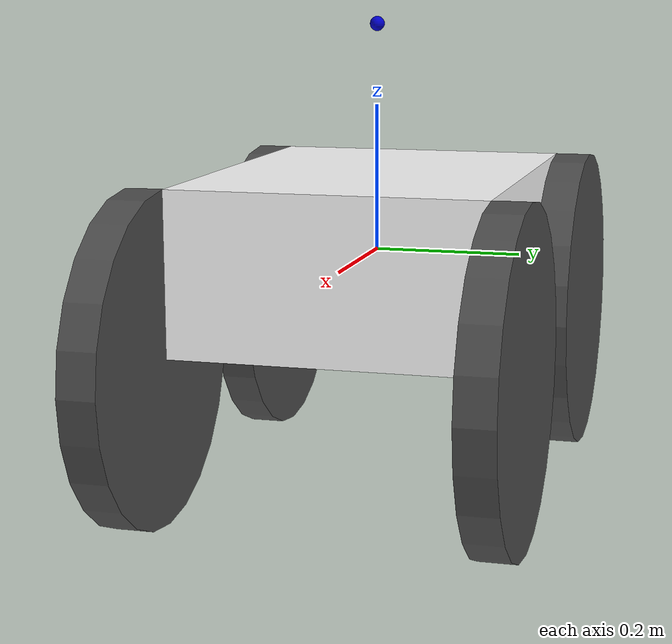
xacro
<?xml version="1.0"?>
<robot name="simple_4_robot" xmlns:xacro="http://ros.org/wiki/xacro">

<!-- Defining the colors used in this robot -->
  <material name="Black">
    <color rgba="0.0 0.0 0.0 1.0"/>
  </material>

  <material name="Red">
    <color rgba="0.8 0.0 0.0 1.0"/>
  </material>

  <material name="White">
    <color rgba="1.0 1.0 1.0 1.0"/>
  </material>

  <material name="Blue">
    <color rgba="0.0 0.0 0.8 1.0"/>
  </material>

  <!-- PROPERTY LIST -->
  <!--All units in m-kg-s-radians unit system -->
  <xacro:property name="M_PI" value="3.1415926535897931" />
  <xacro:property name="M_PI_2" value="1.570796327" />
  <xacro:property name="DEG_TO_RAD" value="0.017453293" />

  <xacro:property name="base_link_length" value="0.54" />
  <xacro:property name="base_link_width" value="0.42" />
  <xacro:property name="base_link_height" value="0.22" />
  <xacro:property name="base_link_mass" value="20" />

  <xacro:property name="wheel_radius" value="0.22 " />
  <xacro:property name="wheel_thickness" value="0.05" />
  <xacro:property name="wheel_mass" value="2.5" />
  <xacro:property name="wheel_x_ratio" value="1" />
  <xacro:property name="wheel_y_ratio" value="1" />

  <xacro:property name="laser_link_radius" value="0.01" />
  <xacro:property name="laser_link_mass" value="0.05" />
  <xacro:property name="laser_link_y" value="0.2" />

  <!-- Macro for calculating inertia of cylinder -->
  <xacro:macro name="cylinder_inertia" params="m r t">
    <inertia  ixx="${m*(3*r*r+t*t)/12}" ixy = "0" ixz = "0"
              iyy="${m*(3*r*r+t*t)/12}" iyz = "0"
              izz="${m*r*r/2}" />
  </xacro:macro>

  <xacro:macro name="cuboid_inertia" params="m l w h">
    <inertia  ixx="${m*(w*w+h*h)/12}" ixy = "0" ixz = "0"
              iyy="${m*(l*l+h*h)/12}" iyz = "0"
              izz="${m*(l*l+w*w)/12}" />
  </xacro:macro>

  <xacro:macro name="sphere_inertia" params="m r">
    <inertia  ixx="${2*m*r*r/5}" ixy = "0" ixz = "0"
              iyy="${2*m*r*r/5}" iyz = "0"
              izz="${2*m*r*r/5}" />
  </xacro:macro>

 <link name="base_link">
    <inertial>
      <mass value="${base_link_mass}"/>
      <origin xyz="0 0 0"/>
      <xacro:cuboid_inertia  m="${base_link_mass}" l="${base_link_length}" w="${base_link_width}" h="${base_link_height}" />
    </inertial>
    <visual>
      <origin rpy="0 0 0" xyz="0 0 0"/>
      <geometry>
        <box size="${base_link_length} ${base_link_width} ${base_link_height}"/>
      </geometry>
      <material name="White"/>
    </visual>
    <collision>
      <origin rpy="0 0 0 " xyz="0 0 0"/>
      <geometry>
        <box size="${base_link_length} ${base_link_width} ${base_link_height}"/>
      </geometry>
    </collision>
  </link>

  <link name="front_right_wheel_link">
    <visual>
      <origin rpy="1.57079632679 0  0 " xyz="0 0 0"/>
      <geometry>
        <cylinder length="${wheel_thickness}" radius="${wheel_radius}"/>
      </geometry>
      <material name="DarkGray"/>
    </visual>
    <collision>
      <origin rpy="1.57079632679 0 0 " xyz="0 0 0"/>
      <geometry>
        <cylinder length="${wheel_thickness}" radius="${wheel_radius}"/>
      </geometry>
    </collision>
    <inertial>
      <mass value="2.5"/>
      <origin xyz="0 0 0"/>
      <xacro:cylinder_inertia  m="${wheel_mass}" r="${wheel_radius}" t="${wheel_thickness}" />
    </inertial>
  </link>
  <joint name="front_right_wheel_joint" type="continuous">
    <parent link="base_link"/>
    <child link="front_right_wheel_link"/>
    <origin rpy="0 0 0" xyz="${wheel_x_ratio*base_link_length/2} ${base_link_width/2+wheel_thickness/2} ${-(wheel_y_ratio*base_link_height/2)}"/>
    <axis rpy="0  0" xyz="0 1 0"/>
    <limit effort="100" velocity="100"/>
    <joint_properties damping="0.0" friction="0.0"/>
  </joint>

  <link name="front_left_wheel_link">
    <visual>
      <origin rpy="1.57079632679 0  0 " xyz="0 0 0"/>
      <geometry>
        <cylinder length="${wheel_thickness}" radius="${wheel_radius}"/>
      </geometry>
      <material name="DarkGray"/>
    </visual>
    <collision>
      <origin rpy="1.57079632679 0 0 " xyz="0 0 0"/>
      <geometry>
        <cylinder length="${wheel_thickness}" radius="${wheel_radius}"/>
      </geometry>
    </collision>
    <inertial>
      <mass value="2.5"/>
      <origin xyz="0 0 0"/>
      <xacro:cylinder_inertia  m="${wheel_mass}" r="${wheel_radius}" t="${wheel_thickness}" />
    </inertial>
  </link>
  <joint name="front_left_wheel_joint" type="continuous">
    <parent link="base_link"/>
    <child link="front_left_wheel_link"/>
    <origin rpy="0 0 0" xyz="${wheel_x_ratio*base_link_length/2} ${-(base_link_width/2+wheel_thickness/2)} ${-(wheel_y_ratio*base_link_height/2)}"/>
    <axis rpy="0  0" xyz="0 1 0"/>
    <limit effort="100" velocity="100"/>
    <joint_properties damping="0.0" friction="0.0"/>
  </joint>

  <link name="back_right_wheel_link">
    <visual>
      <origin rpy="1.57079632679 0  0 " xyz="0 0 0"/>
      <geometry>
        <cylinder length="${wheel_thickness}" radius="${wheel_radius}"/>
      </geometry>
      <material name="DarkGray"/>
    </visual>
    <collision>
      <origin rpy="1.57079632679 0 0 " xyz="0 0 0"/>
      <geometry>
        <cylinder length="${wheel_thickness}" radius="${wheel_radius}"/>
      </geometry>
    </collision>
    <inertial>
      <mass value="2.5"/>
      <origin xyz="0 0 0"/>
      <xacro:cylinder_inertia  m="${wheel_mass}" r="${wheel_radius}" t="${wheel_thickness}" />
    </inertial>
  </link>
  <joint name="back_right_wheel_joint" type="continuous">
    <parent link="base_link"/>
    <child link="back_right_wheel_link"/>
    <origin rpy="0 0 0" xyz="${-(wheel_x_ratio*base_link_length/2)} ${base_link_width/2+wheel_thickness/2} ${-(wheel_y_ratio*base_link_height/2)}"/>
    <axis rpy="0  0" xyz="0 1 0"/>
    <limit effort="100" velocity="100"/>
    <joint_properties damping="0.0" friction="0.0"/>
  </joint>

  <link name="back_left_wheel_link">
    <visual>
      <origin rpy="1.57079632679 0  0 " xyz="0 0 0"/>
      <geometry>
        <cylinder length="${wheel_thickness}" radius="${wheel_radius}"/>
      </geometry>
      <material name="DarkGray"/>
    </visual>
    <collision>
      <origin rpy="1.57079632679 0 0 " xyz="0 0 0"/>
      <geometry>
        <cylinder length="${wheel_thickness}" radius="${wheel_radius}"/>
      </geometry>
    </collision>
    <inertial>
      <mass value="2.5"/>
      <origin xyz="0 0 0"/>
      <xacro:cylinder_inertia  m="${wheel_mass}" r="${wheel_radius}" t="${wheel_thickness}" />
    </inertial>
  </link>
  <joint name="back_left_wheel_joint" type="continuous">
    <parent link="base_link"/>
    <child link="back_left_wheel_link"/>
    <origin rpy="0 0 0" xyz="${-(wheel_x_ratio*base_link_length/2)} ${-(base_link_width/2+wheel_thickness/2)} ${-(wheel_y_ratio*base_link_height/2)}"/>
    <axis rpy="0  0" xyz="0 1 0"/>
    <limit effort="100" velocity="100"/>
    <joint_properties damping="0.0" friction="0.0"/>
  </joint>

  <!-- SENSORS -->
  <link name="laser_link">
    <visual>
      <origin rpy="0 0 0" xyz="0 0 0"/>
      <geometry>
        <sphere radius="${laser_link_radius}"/>
      </geometry>
      <material name="Blue"/>
    </visual>
  </link>
  <joint name="laser_link_joint" type="fixed">
    <origin rpy="0 0 0" xyz="0.0 0.0 ${laser_link_y+base_link_height/2}"/>
    <parent link="base_link"/>
    <child link="laser_link"/>
  </joint>

</robot>
